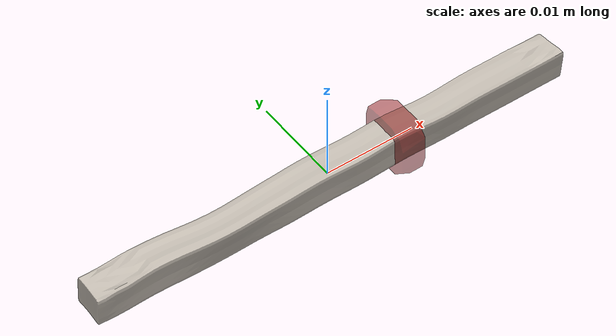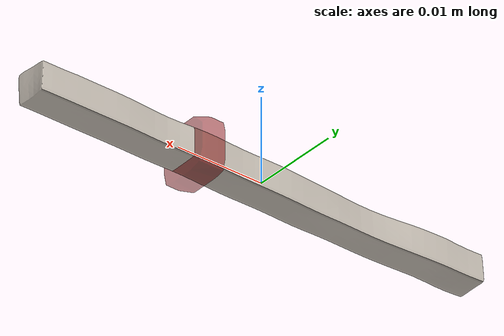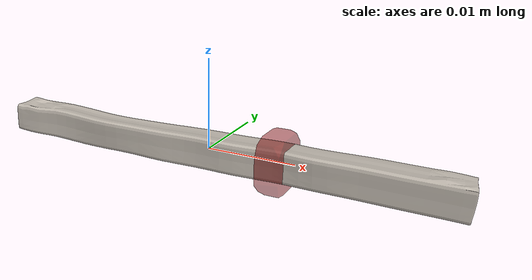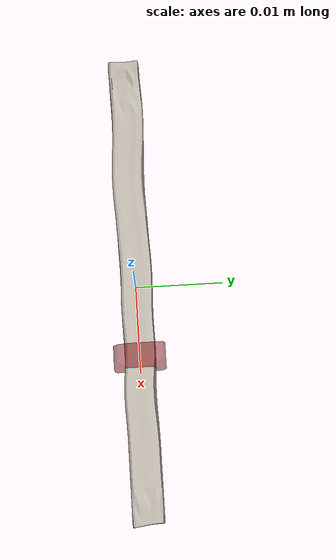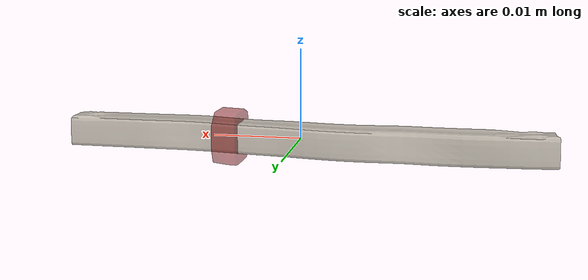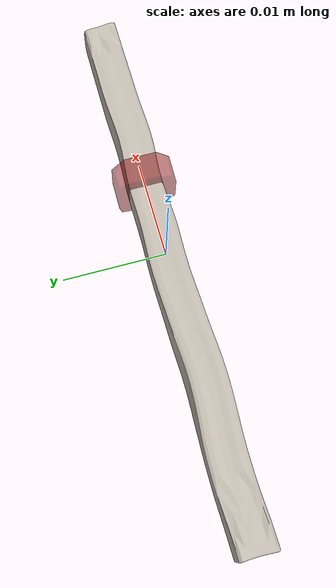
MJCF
<?xml version='1.0' encoding='UTF-8'?>
<mujoco model="model">
  <compiler angle="radian"/>
  <asset>
    <mesh file="visual/CreamCheese004.obj" name="CreamCheese004_vis"/>
    <texture file="visual/T_BC001.png" name="CreamCheese004_material" type="2d"/>
    <material name="CreamCheese004_material" rgba="1 1 1 1.0" texture="CreamCheese004_material" shininess="0.5" specular="0.3103448502657381"/>
    <mesh file="collision/CreamCheese004001.obj" name="CreamCheese004001_mesh"/>
  </asset>
  <default>
    <default class="visual">
      <geom conaffinity="0" contype="0" group="1" type="mesh"/>
    </default>
    <default class="collision">
      <geom group="0" rgba="0.5 0 0 0.5"/>
    </default>
    <default class="spawn">
      <geom group="0" rgba="1 1 1 0.5" contype="0" conaffinity="0"/>
      <site group="0" rgba="1 1 1 0.5"/>
    </default>
    <default class="region">
      <geom group="1" conaffinity="0" contype="0" rgba="0 1 0 0"/>
    </default>
  </default>
  <worldbody>
    <body>
      <body name="object">
        <geom mesh="CreamCheese004_vis" type="mesh" solimp="0.998 0.998 0.001" solref="0.001 1" density="100" friction="0.95 0.3 0.1" class="visual" material="CreamCheese004_material"/>
        <geom mesh="CreamCheese004001_mesh" type="mesh" class="collision"/>
        <geom class="region" name="reg_bbox" type="box" pos="3.201499999999935e-05 -2.1245000000000272e-05 -4.190000000000053e-05" size="0.027815 0.0026772599999999994 0.0026520199999999997"/>
      </body>
    </body>
  </worldbody>
  <actuator/>
</mujoco>
